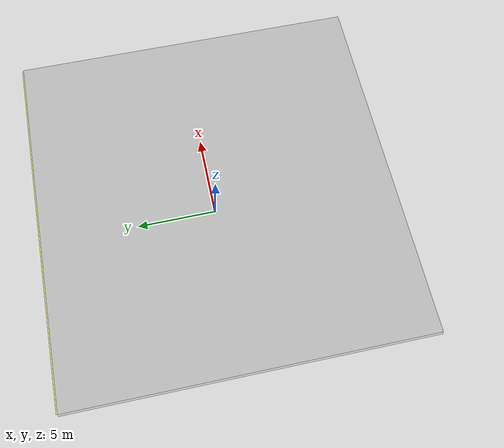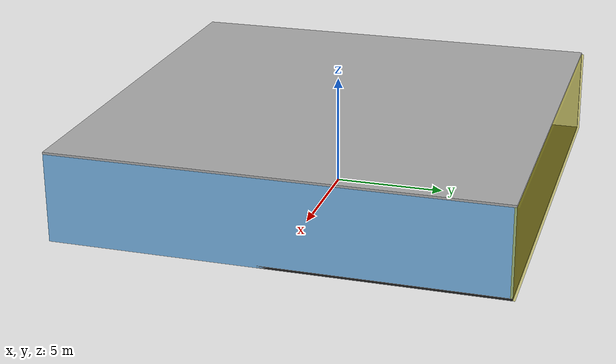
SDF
<sdf version="1.4">
 <world name="default">
  <physics type="ode">
   <max_step_size>0.001</max_step_size>
   <real_time_factor>1</real_time_factor>
   <real_time_update_rate>1000</real_time_update_rate>
   <gravity>0 0 -9.8</gravity>
  </physics>
  <scene><ambient>0.4 0.4 0.4 1</ambient><background>0.7 0.7 0.7 1</background><shadows>1</shadows></scene>
  <model name="Surrounding">
   <static>1</static>
   <link name="Ceiling">
    <collision name="Ceiling_Collision"><geometry><box><size>20 20 0.1</size></box></geometry></collision>
    <visual name="Ceiling_Visual">
     <geometry><box><size>20 20 0.1</size></box></geometry>
     <material>
      <script><uri>file://media/materials/scripts/gazebo.material</uri><name>Gazebo/PioneerBody</name></script>
     </material>
    </visual>
    <pose>0 0 4.05 0 0 0</pose>
   </link>
   <link name="Wall_South">
    <collision name="Wall_South_Collision">
     <geometry><box><size>20 0 4</size></box></geometry>
     <pose>0 0 2 0 -0 0</pose>
    </collision>
    <visual name="Wall_South_Visual">
     <pose>0 0 2 0 -0 0</pose>
     <geometry><box><size>20 0 4</size></box></geometry>
     <material>
      <script><uri>file://media/materials/scripts/gazebo.material</uri><name>Gazebo/FlatBlack</name></script>
     </material>
    </visual>
    <velocity_decay><linear>0</linear><angular>0</angular></velocity_decay>
    <pose>0 -10 0 0 -0 0</pose>
   </link>
   <link name="Wall_East">
    <collision name="Wall_21_Collision">
     <geometry><box><size>20 0 4</size></box></geometry>
     <pose>0 0 2 0 -0 0</pose>
    </collision>
    <visual name="Wall_21_Visual">
     <pose>0 0 2 0 -0 0</pose>
     <geometry><box><size>20 0 4</size></box></geometry>
     <material>
      <script><uri>file://media/materials/scripts/gazebo.material</uri><name>Gazebo/SkyBlue</name></script>
     </material>
    </visual>
    <velocity_decay><linear>0</linear><angular>0</angular></velocity_decay>
    <pose>10 0 0 0 -0 1.5708</pose>
   </link>
   <link name="Wall_North">
    <collision name="Wall_22_Collision">
     <geometry><box><size>20 0.2 4</size></box></geometry>
     <pose>0 0 2 0 -0 0</pose>
    </collision>
    <visual name="Wall_22_Visual">
     <pose>0 0 2 0 -0 0</pose>
     <geometry><box><size>20 0.2 4</size></box></geometry>
     <material>
      <script>
       <uri>file://media/materials/scripts/gazebo.material</uri>
       <name>Gazebo/YellowTransparent</name>
      </script>
     </material>
    </visual>
    <velocity_decay><linear>0</linear><angular>0</angular></velocity_decay>
    <pose>0 10 0 0 -0 0</pose>
   </link>
   <link name="Wall_West">
    <collision name="Wall_23_Collision">
     <geometry><box><size>20 0.2 4</size></box></geometry>
     <pose>0 0 2 0 -0 0</pose>
    </collision>
    <visual name="Wall_23_Visual">
     <pose>0 0 2 0 -0 0</pose>
     <geometry><box><size>20 0.2 4</size></box></geometry>
     <material>
      <script><uri>file://media/materials/scripts/gazebo.material</uri><name>Gazebo/Pioneer2Body</name></script>
     </material>
    </visual>
    <velocity_decay><linear>0</linear><angular>0</angular></velocity_decay>
    <pose>-10 0 0 0 0 -1.5708</pose>
   </link>
   <link name="Ground_link">
    <collision name="collision">
     <pose>0 0 .05 0 -0 0</pose>
     <geometry><box><size>20 20 0.1</size></box></geometry>
    </collision>
    <visual name="visual">
     <pose>0 0 .05 0 -0 0</pose>
     <geometry><box><size>20 20 0.1</size></box></geometry>
     <material>
      <script><uri>file://media/materials/scripts/gazebo.material</uri><name>Gazebo/FlatBlack</name></script>
     </material>
    </visual>
   </link>
   <static>1</static>
  </model>
  <spherical_coordinates>
   <surface_model>EARTH_WGS84</surface_model>
   <latitude_deg>0</latitude_deg>
   <longitude_deg>0</longitude_deg>
   <elevation>0</elevation>
   <heading_deg>0</heading_deg>
  </spherical_coordinates>
  <light name="lightball_0" type="diffuse">
   <diffuse>0.8 0.8 0.8 1</diffuse>
   <specular>0.2 0.2 0.2 1</specular>
   <attenuation>
    <range>100</range>
    <constant>0.7</constant>
    <linear>0.01</linear>
    <quadratic>0.001</quadratic>
   </attenuation>
   <direction>-0.5 0.1 -0.9</direction>
   <pose>-2.24442406025 1.28207134971 3.26591077863 0 0 0</pose>
  </light>
  <light name="lightball_1" type="diffuse">
   <diffuse>0.8 0.8 0.8 1</diffuse>
   <specular>0.2 0.2 0.2 1</specular>
   <attenuation>
    <range>100</range>
    <constant>0.7</constant>
    <linear>0.01</linear>
    <quadratic>0.001</quadratic>
   </attenuation>
   <direction>-0.5 0.1 -0.9</direction>
   <pose>-5.92405342976 -3.18446364189 2.48954191251 0 0 0</pose>
  </light>
  <light name="lightball_2" type="diffuse">
   <diffuse>0.8 0.8 0.8 1</diffuse>
   <specular>0.2 0.2 0.2 1</specular>
   <attenuation>
    <range>100</range>
    <constant>0.7</constant>
    <linear>0.01</linear>
    <quadratic>0.001</quadratic>
   </attenuation>
   <direction>-0.5 0.1 -0.9</direction>
   <pose>-0.570567888942 2.34236816082 0.657077784838 0 0 0</pose>
  </light>
  <light name="lightball_3" type="diffuse">
   <diffuse>0.8 0.8 0.8 1</diffuse>
   <specular>0.2 0.2 0.2 1</specular>
   <attenuation>
    <range>100</range>
    <constant>0.7</constant>
    <linear>0.01</linear>
    <quadratic>0.001</quadratic>
   </attenuation>
   <direction>-0.5 0.1 -0.9</direction>
   <pose>9.60218048782 5.49686487648 3.74818123921 0 0 0</pose>
  </light>
  <light name="lightball_4" type="diffuse">
   <diffuse>0.8 0.8 0.8 1</diffuse>
   <specular>0.2 0.2 0.2 1</specular>
   <attenuation>
    <range>100</range>
    <constant>0.7</constant>
    <linear>0.01</linear>
    <quadratic>0.001</quadratic>
   </attenuation>
   <direction>-0.5 0.1 -0.9</direction>
   <pose>-2.18208029837 -7.79894097238 2.77910221798 0 0 0</pose>
  </light>
  <light name="lightball_5" type="diffuse">
   <diffuse>0.8 0.8 0.8 1</diffuse>
   <specular>0.2 0.2 0.2 1</specular>
   <attenuation>
    <range>100</range>
    <constant>0.7</constant>
    <linear>0.01</linear>
    <quadratic>0.001</quadratic>
   </attenuation>
   <direction>-0.5 0.1 -0.9</direction>
   <pose>-7.8336905985 -4.85144929477 2.8641653159 0 0 0</pose>
  </light>
  <light name="lightball_6" type="diffuse">
   <diffuse>0.8 0.8 0.8 1</diffuse>
   <specular>0.2 0.2 0.2 1</specular>
   <attenuation>
    <range>100</range>
    <constant>0.7</constant>
    <linear>0.01</linear>
    <quadratic>0.001</quadratic>
   </attenuation>
   <direction>-0.5 0.1 -0.9</direction>
   <pose>-7.68434305755 -9.03694275292 2.52332681774 0 0 0</pose>
  </light>
  <light name="lightball_7" type="diffuse">
   <diffuse>0.8 0.8 0.8 1</diffuse>
   <specular>0.2 0.2 0.2 1</specular>
   <attenuation>
    <range>100</range>
    <constant>0.7</constant>
    <linear>0.01</linear>
    <quadratic>0.001</quadratic>
   </attenuation>
   <direction>-0.5 0.1 -0.9</direction>
   <pose>2.78795848758 -9.73929357109 3.35050372371 0 0 0</pose>
  </light>
  <light name="lightball_8" type="diffuse">
   <diffuse>0.8 0.8 0.8 1</diffuse>
   <specular>0.2 0.2 0.2 1</specular>
   <attenuation>
    <range>100</range>
    <constant>0.7</constant>
    <linear>0.01</linear>
    <quadratic>0.001</quadratic>
   </attenuation>
   <direction>-0.5 0.1 -0.9</direction>
   <pose>-3.8000134843 -2.18833524901 0.562481303082 0 0 0</pose>
  </light>
  <include><uri>model://table</uri><pose>1.50473898427 -5.57351295783 0 0 0 2.80335642912</pose></include>
 </world>
</sdf>

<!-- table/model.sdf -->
<sdf version="1.5">
  <model name="table">
    <static>true</static>
    <link name="link">
      <collision name="surface">
        <pose>0 0 1.0 0 0 0</pose>
        <geometry>
          <box>
            <size>1.5 0.8 0.03</size>
          </box>
        </geometry>
        <surface>
          <friction>
            <ode>
              <mu>0.6</mu>
              <mu2>0.6</mu2>
            </ode>
          </friction>
        </surface>
      </collision>
      <visual name="visual1">
        <pose>0 0 1.0 0 0 0</pose>
        <geometry>
          <box>
            <size>1.5 0.8 0.03</size>
          </box>
        </geometry>
        <material>
          <script>
            <uri>model://media/materials/scripts/gazebo.material</uri>
            <name>Gazebo/Wood</name>
          </script>
        </material>
      </visual>
      <collision name="front_left_leg">
        <pose>0.68 0.38 0.5 0 0 0</pose>
        <geometry>
          <cylinder>
            <radius>0.02</radius>
            <length>1.0</length>
          </cylinder>
        </geometry>
      </collision>
      <visual name="front_left_leg">
        <pose>0.68 0.38 0.5 0 0 0</pose>
        <geometry>
          <cylinder>
            <radius>0.02</radius>
            <length>1.0</length>
          </cylinder>
        </geometry>
        <material>
          <script>
            <uri>model://media/materials/scripts/gazebo.material</uri>
            <name>Gazebo/Grey</name>
          </script>
        </material>
      </visual>
      <collision name="front_right_leg">
        <pose>0.68 -0.38 0.5 0 0 0</pose>
        <geometry>
          <cylinder>
            <radius>0.02</radius>
            <length>1.0</length>
          </cylinder>
        </geometry>
      </collision>
      <visual name="front_right_leg">
        <pose>0.68 -0.38 0.5 0 0 0</pose>
        <geometry>
          <cylinder>
            <radius>0.02</radius>
            <length>1.0</length>
          </cylinder>
        </geometry>
        <material>
          <script>
            <uri>model://media/materials/scripts/gazebo.material</uri>
            <name>Gazebo/Grey</name>
          </script>
        </material>
      </visual>
      <collision name="back_right_leg">
        <pose>-0.68 -0.38 0.5 0 0 0</pose>
        <geometry>
          <cylinder>
            <radius>0.02</radius>
            <length>1.0</length>
          </cylinder>
        </geometry>
      </collision>
      <visual name="back_right_leg">
        <pose>-0.68 -0.38 0.5 0 0 0</pose>
        <geometry>
          <cylinder>
            <radius>0.02</radius>
            <length>1.0</length>
          </cylinder>
        </geometry>
        <material>
          <script>
            <uri>model://media/materials/scripts/gazebo.material</uri>
            <name>Gazebo/Grey</name>
          </script>
        </material>
      </visual>
      <collision name="back_left_leg">
        <pose>-0.68 0.38 0.5 0 0 0</pose>
        <geometry>
          <cylinder>
            <radius>0.02</radius>
            <length>1.0</length>
          </cylinder>
        </geometry>
      </collision>
      <visual name="back_left_leg">
        <pose>-0.68 0.38 0.5 0 0 0</pose>
        <geometry>
          <cylinder>
            <radius>0.02</radius>
            <length>1.0</length>
          </cylinder>
        </geometry>
        <material>
          <script>
            <uri>model://media/materials/scripts/gazebo.material</uri>
            <name>Gazebo/Grey</name>
          </script>
        </material>
      </visual>
    </link>
  </model>
</sdf>
